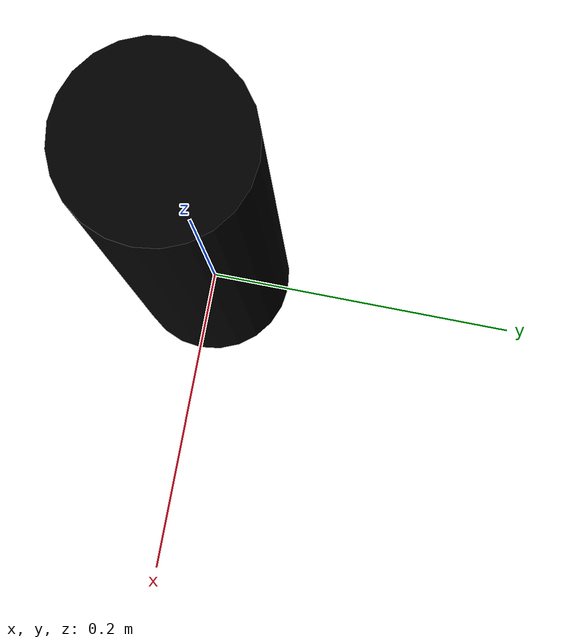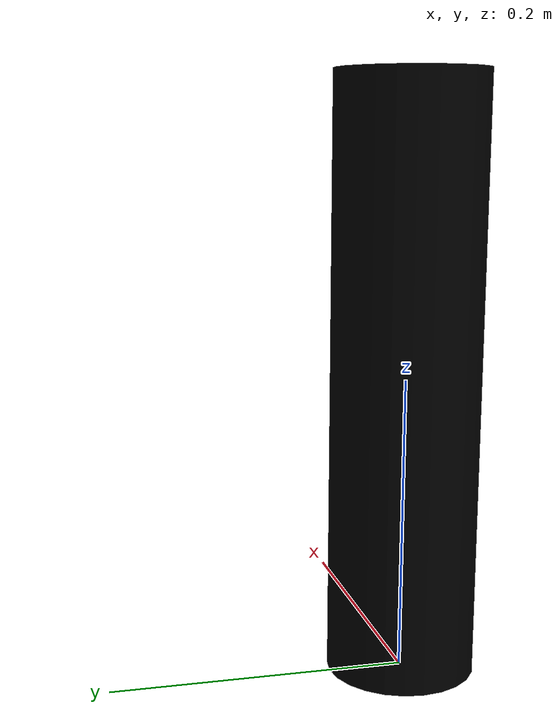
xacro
<?xml version="1.0" ?>
<robot name="ModularBot" xmlns:xacro="http://ros.org/wiki/xacro">
   <xacro:property name="size1" value="0.05"/>
   <xacro:property name="size2" value="0.055"/>
   <xacro:property name="size3" value="0.06"/>
   <xacro:property name="len1" value="0.4"/>
   <xacro:property name="len2" value="0.6"/>
   <xacro:property name="len3" value="0.8"/>
   <xacro:property name="mass" value="0.5"/>
   <material name="blue">
      <color rgba="0 0 0.8 1"/>
   </material>
   <material name="black">
      <color rgba="0 0 0 1"/>
   </material>
   <material name="white">
      <color rgba="1 1 1 1"/>
   </material>
   <material name="grey">
      <color rgba="0.5 0.5 0.5 1"/>
   </material>
   <xacro:macro name="default_inertial" params="mass">
      <inertial>
         <mass value="${mass}"/>
         <inertia ixx="1.0" ixy="0.0" ixz="0.0" iyy="1.0" iyz="0.0" izz="1.0"/>
      </inertial>
   </xacro:macro>
   <link name="world"/>
   <joint name="world" type="fixed">
      <parent link="world"/>
      <child link="base_link"/>
   </joint>
   <link name="base_link"/>
   <link name="L_0">
      <visual>
         <origin rpy="0 0 0" xyz="0 0 ${len1/2}"/>
         <geometry>
            <cylinder length="${len1}" radius="${size1}"/>
         </geometry>
         <material name="black"/>
      </visual>
      <collision>
         <origin rpy="0 0 0" xyz="0 0 ${len1/2}"/>
         <geometry>
            <cylinder length="${len1}" radius="${size1}"/>
         </geometry>
      </collision>
      <xacro:default_inertial mass="1"/>
   </link>
   <joint name="fixed" type="fixed">
      <parent link="base_link"/>
      <child link="L_0"/>
   </joint>
   <xacro:macro name="add_link" params="name type size_z size">
      <xacro:if value="${size==1}">
         <xacro:property name="radius" value="${size1}"/>
      </xacro:if>
      <xacro:unless value="${size==1}">
         <xacro:if value="${size==2}">
            <xacro:property name="radius" value="${size2}"/>
         </xacro:if>
         <xacro:unless value="${size==2}">
            <xacro:property name="radius" value="${size3}"/>
         </xacro:unless>
      </xacro:unless>
      <link name="${name}">
         <visual>
            <origin rpy="0 0 0" xyz="0 0 ${size_z/2}"/>
            <geometry>
               <cylinder length="${size_z}" radius="${radius}"/>
            </geometry>
            <material name="black"/>
         </visual>
         <collision>
            <origin rpy="0 0 0" xyz="0 0 ${size_z/2}"/>
            <geometry>
               <cylinder length="${size_z}" radius="${radius}"/>
            </geometry>
         </collision>
         <inertial>
            <origin rpy="0 0 0" xyz="0 0 ${size_z/2}"/>
            <mass value="${mass}"/>
            <inertia ixx="${mass / 12.0 * (3*radius*radius + size_z*size_z)}" ixy="0.0" ixz="0.0" iyy="${mass / 12.0 * (size_z*size_z + 3*radius*radius)}" iyz="0.0" izz="${mass / 2.0 * (radius*radius)}"/>
         </inertial>
      </link>
      <gazebo reference="${name}">
         <mu1>0.2</mu1>
         <mu2>0.2</mu2>
         <kp>1000000.0</kp>
         <kd>1.0</kd>
         <maxVel>0.0</maxVel>
         <minDepth>0.0001</minDepth>
         <material>Gazebo/White</material>
      </gazebo>
   </xacro:macro>
   <xacro:macro name="add_size_adapter" params="type name size_z size_in size_out">
      <xacro:if value="${size_in==3}">
         <xacro:property name="radius1" value="${size3}"/>
      </xacro:if>
      <xacro:unless value="${size_in==3}">
         <xacro:if value="${size_in==2}">
            <xacro:property name="radius1" value="${size2}"/>
         </xacro:if>
         <xacro:unless value="${size_in==2}">

            </xacro:unless>
      </xacro:unless>
      <xacro:if value="${size_out==3}">

        </xacro:if>
      <xacro:unless value="${size_out==3}">
         <xacro:if value="${size_out==2}">
            <xacro:property name="radius2" value="${size2}"/>
         </xacro:if>
         <xacro:unless value="${size_out==2}">
            <xacro:property name="radius2" value="${size1}"/>
         </xacro:unless>
      </xacro:unless>
      <link name="${name}">
         <visual>
            <origin rpy="0 0 0" xyz="0 0 ${size_z/4}"/>
            <geometry>
               <cylinder length="${size_z/2}" radius="${radius1}"/>
            </geometry>
            <material name="grey"/>
         </visual>
         <visual>
            <origin rpy="0 0 0" xyz="0 0 ${3*size_z/4}"/>
            <geometry>
               <cylinder length="${size_z/2}" radius="${radius2}"/>
            </geometry>
            <material name="grey"/>
         </visual>
         <collision>
            <origin rpy="0 0 0" xyz="0 0 ${size_z/4}"/>
            <geometry>
               <cylinder length="${size_z/2}" radius="${radius1}"/>
            </geometry>
         </collision>
         <collision>
            <origin rpy="0 0 0" xyz="0 0 ${3*size_z/4}"/>
            <geometry>
               <cylinder length="${size_z/2}" radius="${radius2}"/>
            </geometry>
         </collision>
         <inertial>
            <origin rpy="0 0 0" xyz="0 0 ${size_z/2}"/>
            <mass value="${mass}"/>
            <inertia ixx="${mass / 12.0 * (3*radius1*radius1 + 4*size_z/2*size_z/2) + mass / 12.0 * (3*radius2*radius2 + 4*size_z/2*size_z/2)}" ixy="0.0" ixz="0.0" iyy="${mass / 12.0 * (3*radius1*radius1 + 4*size_z/2*size_z/2) + mass / 12.0 * (3*radius2*radius2 + 4*size_z/2*size_z/2)}" iyz="0.0" izz="${mass / 4.0 * (radius1*radius1) + mass / 4.0 * (radius2*radius2)}"/>
         </inertial>
      </link>
      <gazebo reference="${name}">
         <mu1>0.2</mu1>
         <mu2>0.2</mu2>
         <kp>1000000.0</kp>
         <kd>1.0</kd>
         <maxVel>0.0</maxVel>
         <minDepth>0.0001</minDepth>
         <material>Gazebo/Grey</material>
      </gazebo>
   </xacro:macro>
   <xacro:macro name="add_elbow" params="type name size_y size_z size">
      <xacro:if value="${size==1}">
         <xacro:property name="radius" value="${size1}"/>
      </xacro:if>
      <xacro:unless value="${size==1}">
         <xacro:if value="${size==2}">
            <xacro:property name="radius" value="${size2}"/>
         </xacro:if>
         <xacro:unless value="${size==2}">
            <xacro:property name="radius" value="${size3}"/>
         </xacro:unless>
      </xacro:unless>
      <link name="${name}">
         <visual>
            <origin rpy="0 0 0" xyz="0 0 ${size_z/2}"/>
            <geometry>
               <cylinder length="${size_z}" radius="${radius}"/>
            </geometry>
            <material name="white"/>
         </visual>
         <visual>
            <origin rpy="1.57 0 0" xyz="0 ${size_y/2} ${size_z}"/>
            <geometry>
               <cylinder length="${size_y}" radius="${radius}"/>
            </geometry>
            <material name="white"/>
         </visual>
         <visual>
            <origin rpy="0 0 0" xyz="0 0 ${size_z}"/>
            <geometry>
               <sphere radius="${radius}"/>
            </geometry>
            <material name="white"/>
         </visual>
         <collision>
            <origin rpy="0 0 0" xyz="0 0 ${size_z/2}"/>
            <geometry>
               <cylinder length="${size_z}" radius="${radius}"/>
            </geometry>
         </collision>
         <inertial>
            <origin rpy="0 0 0" xyz="0 0 ${size_z/2}"/>
            <mass value="${mass}"/>
            <inertia ixx="${mass / 2 *( 1 / 12.0 * (3*radius*radius + 4*size_y*size_y) + size_z*size_z) + mass / 24.0 * (3*radius*radius + 4*size_z*size_z)}" ixy="0.0" ixz="0.0" iyy="${mass / 24.0 * (3*radius*radius + 4*size_z*size_z) + mass / 2 *( 1 / 2 *radius*radius + size_z*size_z)}" iyz="0.0" izz="${mass / 4.0 * (radius*radius) + mass / 24.0 * (3*radius*radius + 4*size_y*size_y)}"/>
         </inertial>
         <collision>
            <origin rpy="1.57 0 0" xyz="0 ${size_y/2} ${size_z}"/>
            <geometry>
               <cylinder length="${size_y}" radius="${radius}"/>
            </geometry>
         </collision>
         <collision>
            <origin rpy="0 0 0" xyz="0 0 ${size_z}"/>
            <geometry>
               <sphere radius="${radius}"/>
            </geometry>
         </collision>
      </link>
      <gazebo reference="${name}">
         <mu1>0.2</mu1>
         <mu2>0.2</mu2>
         <kp>1000000.0</kp>
         <kd>1.0</kd>
         <maxVel>0.0</maxVel>
         <minDepth>0.0001</minDepth>
         <material>Gazebo/White</material>
      </gazebo>
   </xacro:macro>
   <xacro:macro name="add_fixed_joint" params="type name father child x y z roll pitch yaw">
      <joint name="${name}" type="fixed">
         <axis rpy="0 0 0" xyz="0 0 1"/>
         <parent link="${father}"/>
         <child link="${child}"/>
         <origin rpy="${roll} ${pitch} ${yaw}" xyz="${x} ${y} ${z}"/>
      </joint>
   </xacro:macro>
   <xacro:macro name="add_joint" params="type name father child x y z roll pitch yaw upper_lim lower_lim effort velocity">
      <joint name="${name}" type="revolute">
         <axis rpy="0 0 0" xyz="0 0 1"/>
         <parent link="${father}"/>
         <child link="${child}"/>
         <origin rpy="${roll} ${pitch} ${yaw}" xyz="${x} ${y} ${z}"/>
         <limit effort="${effort}" lower="${lower_lim}" upper="${upper_lim}" velocity="${velocity}"/>
      </joint>
      <link name="${child}"/>
   </xacro:macro>
   <xacro:macro name="add_joint_stator" params="type name size_y size_z size">
      <xacro:if value="${size==1}">
         <xacro:property name="radius" value="${size1}"/>
      </xacro:if>
      <xacro:unless value="${size==1}">
         <xacro:if value="${size==2}">
            <xacro:property name="radius" value="${size2}"/>
         </xacro:if>
         <xacro:unless value="${size==2}">
            <xacro:property name="radius" value="${size3}"/>
         </xacro:unless>
      </xacro:unless>
      <link name="${name}">
         <visual>
            <origin rpy="0 0 0" xyz="0 0 ${size_z/2}"/>
            <geometry>
               <cylinder length="${size_z}" radius="${radius}"/>
            </geometry>
            <material name="blue"/>
         </visual>
         <collision>
            <origin rpy="0 0 0" xyz="0 0 ${size_z/2}"/>
            <geometry>
               <cylinder length="${size_z}" radius="${radius}"/>
            </geometry>
         </collision>
         <inertial>
            <origin rpy="0 0 0" xyz="0 0 ${size_z/2}"/>
            <mass value="${mass}"/>
            <inertia ixx="${mass / 12.0 * (3*radius*radius + size_z*size_z)}" ixy="0.0" ixz="0.0" iyy="${mass / 12.0 * (size_z*size_z + 3*radius*radius)}" iyz="0.0" izz="${mass / 2.0 * (radius*radius)}"/>
         </inertial>
      </link>
      <gazebo reference="${name}">
         <mu1>0.2</mu1>
         <mu2>0.2</mu2>
         <kp>1000000.0</kp>
         <kd>1.0</kd>
         <maxVel>0.0</maxVel>
         <minDepth>0.0001</minDepth>
         <material>Gazebo/Blue</material>
      </gazebo>
   </xacro:macro>
   <xacro:macro name="add_fixed_joint_stator" params="type name father child x y z roll pitch yaw">
      <joint name="${name}" type="fixed">
         <axis rpy="0 0 0" xyz="0 0 1"/>
         <parent link="${father}"/>
         <child link="${child}"/>
         <origin rpy="${roll} ${pitch} ${yaw}" xyz="${x} ${y} ${z}"/>
      </joint>
   </xacro:macro>
</robot>
